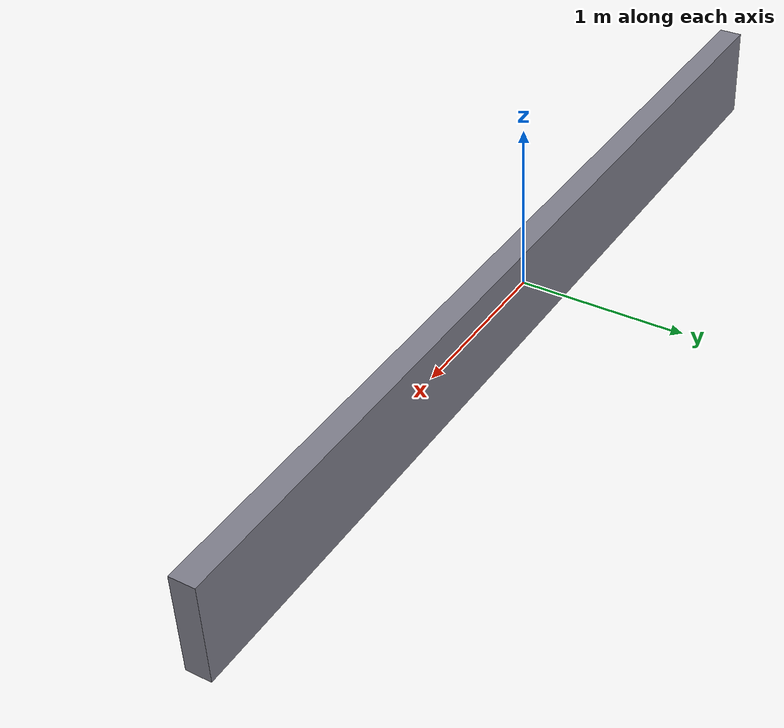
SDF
<?xml version="1.0"?>
<sdf version="1.9">
  <model name="wall">
    <static>true</static>
    <link name="link">
      <collision name="collision">
        <geometry>
          <box><size>6.0 0.15 0.6</size></box>
        </geometry>
      </collision>
      <visual name="visual">
        <geometry>
          <box><size>6.0 0.15 0.6</size></box>
        </geometry>
        <material>
          <ambient>0.3 0.3 0.35 1</ambient>
          <diffuse>0.5 0.5 0.55 1</diffuse>
        </material>
      </visual>
    </link>
  </model>
</sdf>
